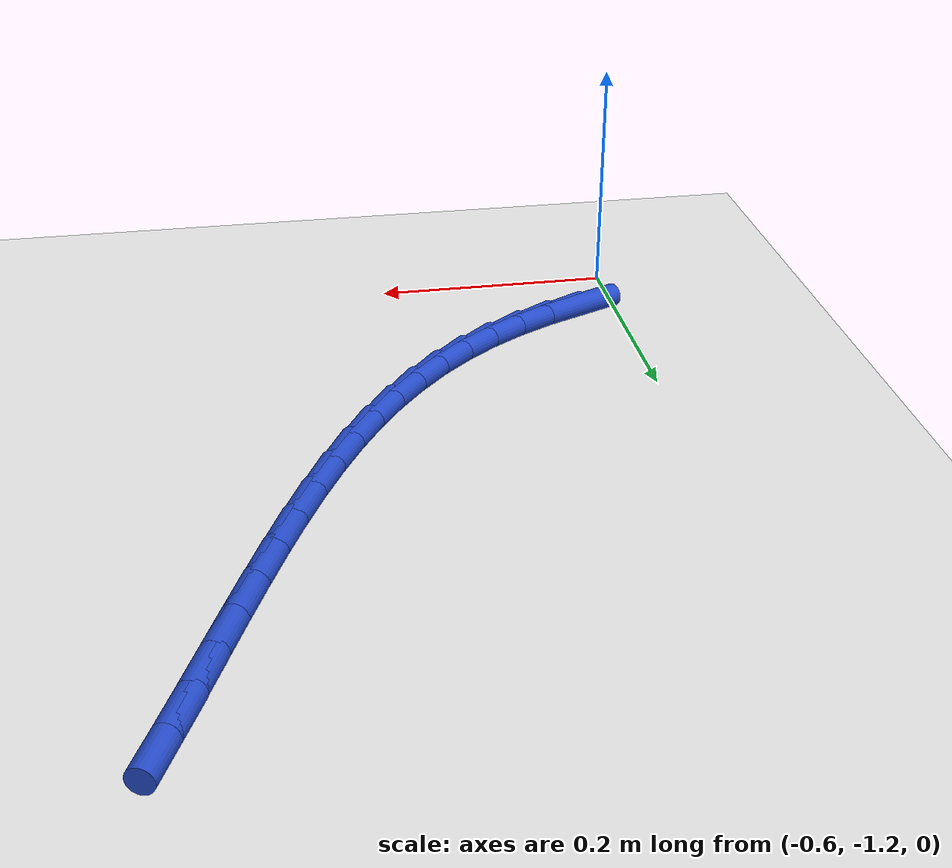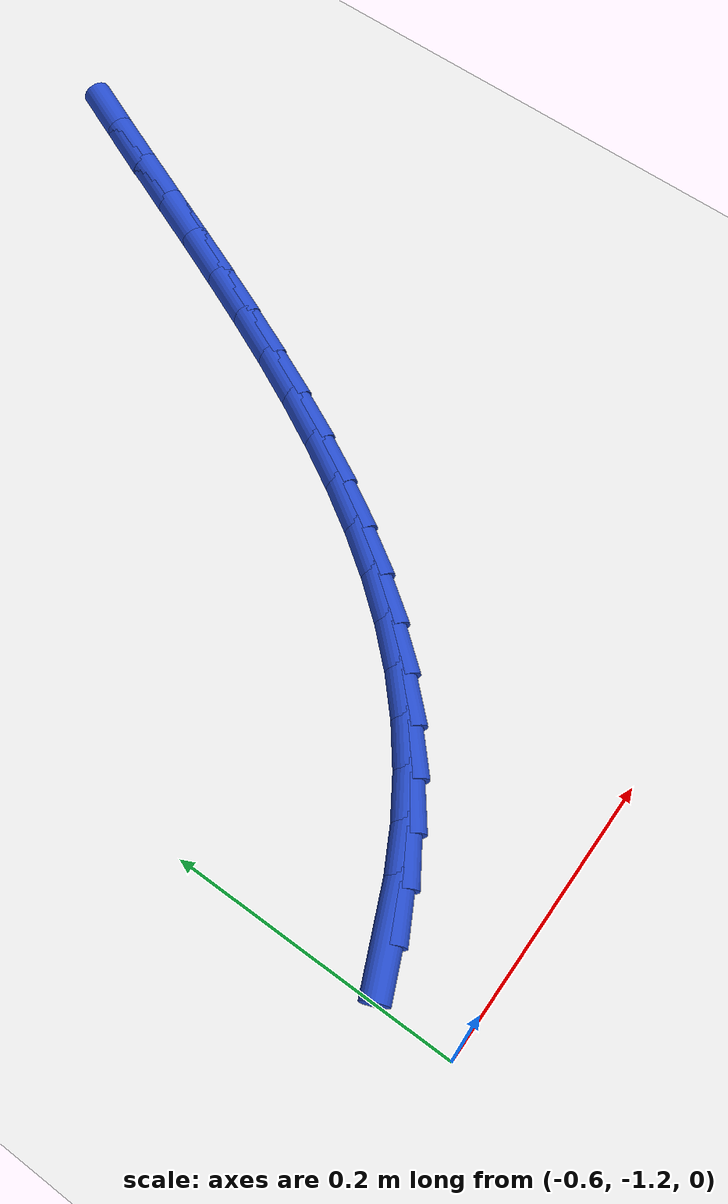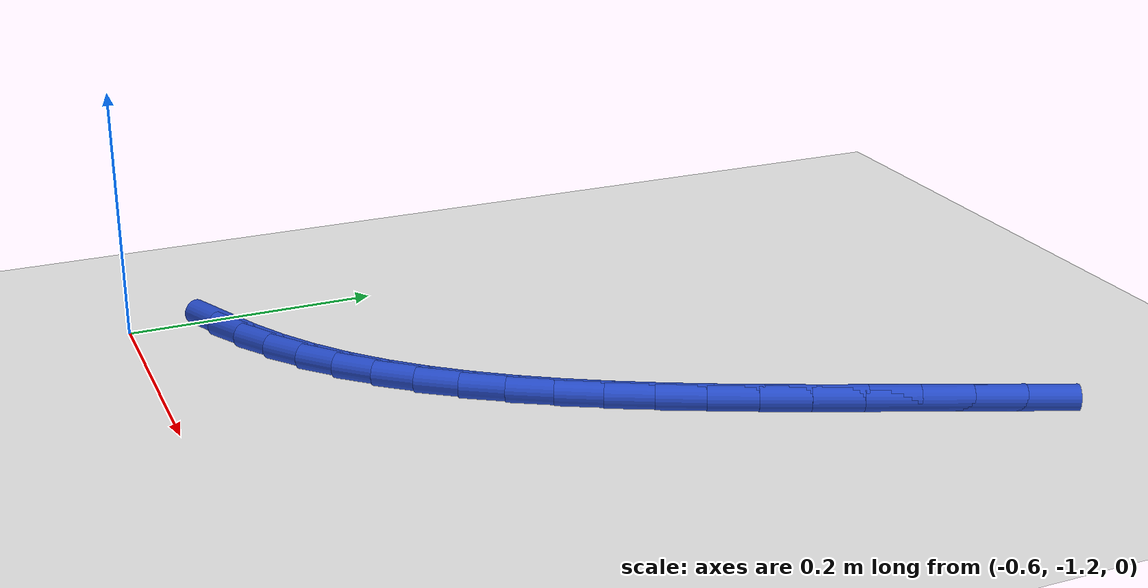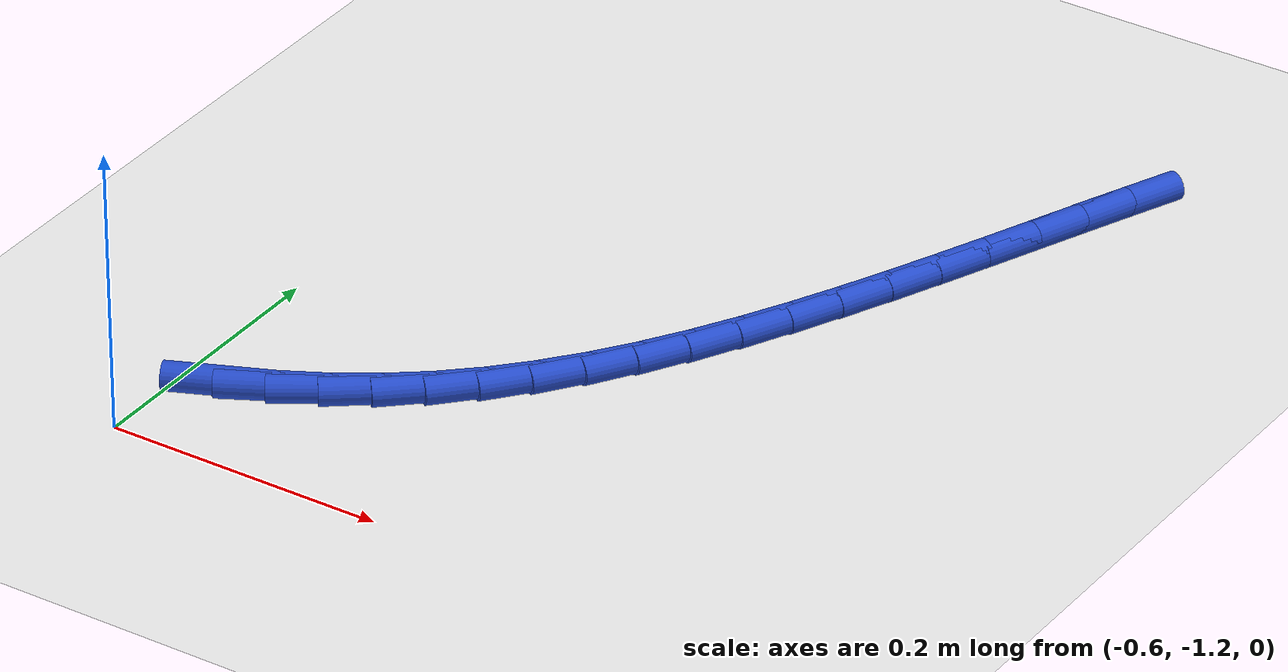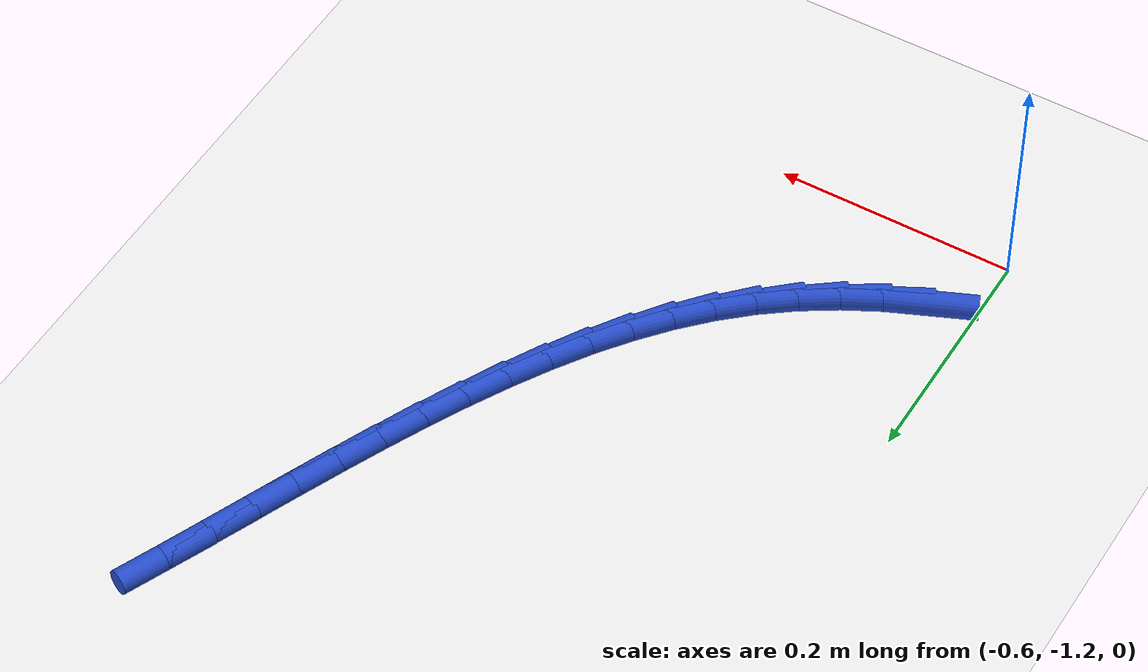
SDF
<sdf version="1.6">
 <world name="default">
  <model name="ground_plane">
   <static>1</static>
   <link name="link">
    <collision name="collision">
     <geometry><plane><normal>0 0 1</normal><size>100 100</size></plane></geometry>
     <surface><friction><ode><mu>100</mu><mu2>50</mu2></ode></friction></surface>
    </collision>
    <visual name="visual">
     <cast_shadows>0</cast_shadows>
     <geometry><plane><normal>0 0 1</normal><size>100 100</size></plane></geometry>
     <material>
      <script><uri>file://media/materials/scripts/gazebo.material</uri><name>Gazebo/WhiteGlow</name></script>
     </material>
    </visual>
   </link>
  </model>
  <model name="line">
   <link name="link_184">
    <pose>-0.5645913273455582 -1.1299433025380412 0.01 0 1.57 0.4108148422694466</pose>
    <collision name="collision">
     <geometry><cylinder><radius>0.01</radius><length>0.08</length></cylinder></geometry>
    </collision>
    <visual name="visual">
     <material>
      <script><name>Gazebo/Blue</name><uri>file://media/materials/scripts/gazebo.material</uri></script>
     </material>
     <geometry><cylinder><radius>0.01</radius><length>0.08</length></cylinder></geometry>
    </visual>
   </link>
   <link name="link_185">
    <pose>-0.5334767354039931 -1.1163897764095263 0.01 0 1.57 0.48780431756810383</pose>
    <collision name="collision">
     <geometry><cylinder><radius>0.01</radius><length>0.08</length></cylinder></geometry>
    </collision>
    <visual name="visual">
     <material>
      <script><name>Gazebo/Blue</name><uri>file://media/materials/scripts/gazebo.material</uri></script>
     </material>
     <geometry><cylinder><radius>0.01</radius><length>0.08</length></cylinder></geometry>
    </visual>
   </link>
   <link name="link_186">
    <pose>-0.5038778151258286 -1.1006854452859793 0.01 0 1.57 0.5676453198071622</pose>
    <collision name="collision">
     <geometry><cylinder><radius>0.01</radius><length>0.08</length></cylinder></geometry>
    </collision>
    <visual name="visual">
     <material>
      <script><name>Gazebo/Blue</name><uri>file://media/materials/scripts/gazebo.material</uri></script>
     </material>
     <geometry><cylinder><radius>0.01</radius><length>0.08</length></cylinder></geometry>
    </visual>
   </link>
   <link name="link_187">
    <pose>-0.47584352873182306 -1.0828093412624504 0.01 0 1.57 0.649609374188849</pose>
    <collision name="collision">
     <geometry><cylinder><radius>0.01</radius><length>0.08</length></cylinder></geometry>
    </collision>
    <visual name="visual">
     <material>
      <script><name>Gazebo/Blue</name><uri>file://media/materials/scripts/gazebo.material</uri></script>
     </material>
     <geometry><cylinder><radius>0.01</radius><length>0.08</length></cylinder></geometry>
    </visual>
   </link>
   <link name="link_188">
    <pose>-0.44942283844273273 -1.0627404964339877 0.01 0 1.57 0.7325397777059796</pose>
    <collision name="collision">
     <geometry><cylinder><radius>0.01</radius><length>0.08</length></cylinder></geometry>
    </collision>
    <visual name="visual">
     <material>
      <script><name>Gazebo/Blue</name><uri>file://media/materials/scripts/gazebo.material</uri></script>
     </material>
     <geometry><cylinder><radius>0.01</radius><length>0.08</length></cylinder></geometry>
    </visual>
   </link>
   <link name="link_189">
    <pose>-0.4246583139401859 -1.0404647623933392 0.01 0 1.57 0.8110759091077192</pose>
    <collision name="collision">
     <geometry><cylinder><radius>0.01</radius><length>0.08</length></cylinder></geometry>
    </collision>
    <visual name="visual">
     <material>
      <script><name>Gazebo/Blue</name><uri>file://media/materials/scripts/gazebo.material</uri></script>
     </material>
     <geometry><cylinder><radius>0.01</radius><length>0.08</length></cylinder></geometry>
    </visual>
   </link>
   <link name="link_190">
    <pose>-0.401491117052594 -1.0160761716309767 0.01 0 1.57 0.8811070999727622</pose>
    <collision name="collision">
     <geometry><cylinder><radius>0.01</radius><length>0.08</length></cylinder></geometry>
    </collision>
    <visual name="visual">
     <material>
      <script><name>Gazebo/Blue</name><uri>file://media/materials/scripts/gazebo.material</uri></script>
     </material>
     <geometry><cylinder><radius>0.01</radius><length>0.08</length></cylinder></geometry>
    </visual>
   </link>
   <link name="link_191">
    <pose>-0.3797812925755198 -0.9897552914880426 0.01 0 1.57 0.9424661646177209</pose>
    <collision name="collision">
     <geometry><cylinder><radius>0.01</radius><length>0.08</length></cylinder></geometry>
    </collision>
    <visual name="visual">
     <material>
      <script><name>Gazebo/Blue</name><uri>file://media/materials/scripts/gazebo.material</uri></script>
     </material>
     <geometry><cylinder><radius>0.01</radius><length>0.08</length></cylinder></geometry>
    </visual>
   </link>
   <link name="link_192">
    <pose>-0.35938661444345044 -0.9616851118378746 0.01 0 1.57 0.995417060128679</pose>
    <collision name="collision">
     <geometry><cylinder><radius>0.01</radius><length>0.08</length></cylinder></geometry>
    </collision>
    <visual name="visual">
     <material>
      <script><name>Gazebo/Blue</name><uri>file://media/materials/scripts/gazebo.material</uri></script>
     </material>
     <geometry><cylinder><radius>0.01</radius><length>0.08</length></cylinder></geometry>
    </visual>
   </link>
   <link name="link_193">
    <pose>-0.3401648565908737 -0.9320486225538117 0.01 0 1.57 1.0404117188490236</pose>
    <collision name="collision">
     <geometry><cylinder><radius>0.01</radius><length>0.08</length></cylinder></geometry>
    </collision>
    <visual name="visual">
     <material>
      <script><name>Gazebo/Blue</name><uri>file://media/materials/scripts/gazebo.material</uri></script>
     </material>
     <geometry><cylinder><radius>0.01</radius><length>0.08</length></cylinder></geometry>
    </visual>
   </link>
   <link name="link_194">
    <pose>-0.32197379295227735 -0.9010288135091924 0.01 0 1.57 1.0779795012358993</pose>
    <collision name="collision">
     <geometry><cylinder><radius>0.01</radius><length>0.08</length></cylinder></geometry>
    </collision>
    <visual name="visual">
     <material>
      <script><name>Gazebo/Blue</name><uri>file://media/materials/scripts/gazebo.material</uri></script>
     </material>
     <geometry><cylinder><radius>0.01</radius><length>0.08</length></cylinder></geometry>
    </visual>
   </link>
   <link name="link_195">
    <pose>-0.3046711974621487 -0.8688086745773549 0.01 0 1.57 1.1086514284643414</pose>
    <collision name="collision">
     <geometry><cylinder><radius>0.01</radius><length>0.08</length></cylinder></geometry>
    </collision>
    <visual name="visual">
     <material>
      <script><name>Gazebo/Blue</name><uri>file://media/materials/scripts/gazebo.material</uri></script>
     </material>
     <geometry><cylinder><radius>0.01</radius><length>0.08</length></cylinder></geometry>
    </visual>
   </link>
   <link name="link_196">
    <pose>-0.28811484405497645 -0.8355711956316394 0.01 0 1.57 1.132913021463429</pose>
    <collision name="collision">
     <geometry><cylinder><radius>0.01</radius><length>0.08</length></cylinder></geometry>
    </collision>
    <visual name="visual">
     <material>
      <script><name>Gazebo/Blue</name><uri>file://media/materials/scripts/gazebo.material</uri></script>
     </material>
     <geometry><cylinder><radius>0.01</radius><length>0.08</length></cylinder></geometry>
    </visual>
   </link>
   <link name="link_197">
    <pose>-0.2721625066652477 -0.801499366545384 0.01 0 1.57 1.1511775785936242</pose>
    <collision name="collision">
     <geometry><cylinder><radius>0.01</radius><length>0.08</length></cylinder></geometry>
    </collision>
    <visual name="visual">
     <material>
      <script><name>Gazebo/Blue</name><uri>file://media/materials/scripts/gazebo.material</uri></script>
     </material>
     <geometry><cylinder><radius>0.01</radius><length>0.08</length></cylinder></geometry>
    </visual>
   </link>
   <link name="link_198">
    <pose>-0.25667195922745034 -0.766776177191927 0.01 0 1.57 1.1637726356718858</pose>
    <collision name="collision">
     <geometry><cylinder><radius>0.01</radius><length>0.08</length></cylinder></geometry>
    </collision>
    <visual name="visual">
     <material>
      <script><name>Gazebo/Blue</name><uri>file://media/materials/scripts/gazebo.material</uri></script>
     </material>
     <geometry><cylinder><radius>0.01</radius><length>0.08</length></cylinder></geometry>
    </visual>
   </link>
   <link name="link_199">
    <pose>-0.2415009756760718 -0.7315846174446071 0.01 0 1.57 1.1709341691366346</pose>
    <collision name="collision">
     <geometry><cylinder><radius>0.01</radius><length>0.08</length></cylinder></geometry>
    </collision>
    <visual name="visual">
     <material>
      <script><name>Gazebo/Blue</name><uri>file://media/materials/scripts/gazebo.material</uri></script>
     </material>
     <geometry><cylinder><radius>0.01</radius><length>0.08</length></cylinder></geometry>
    </visual>
   </link>
   <link name="link_200">
    <pose>-0.2265073299456004 -0.6961076771767638 0.01 0 1.57 1.1728048786552687</pose>
    <collision name="collision">
     <geometry><cylinder><radius>0.01</radius><length>0.08</length></cylinder></geometry>
    </collision>
    <visual name="visual">
     <material>
      <script><name>Gazebo/Blue</name><uri>file://media/materials/scripts/gazebo.material</uri></script>
     </material>
     <geometry><cylinder><radius>0.01</radius><length>0.08</length></cylinder></geometry>
    </visual>
   </link>
   <link name="link_201">
    <pose>-0.2115487959705237 -0.6605283462617358 0.01 0 1.57 1.1694343154054758</pose>
    <collision name="collision">
     <geometry><cylinder><radius>0.01</radius><length>0.08</length></cylinder></geometry>
    </collision>
    <visual name="visual">
     <material>
      <script><name>Gazebo/Blue</name><uri>file://media/materials/scripts/gazebo.material</uri></script>
     </material>
     <geometry><cylinder><radius>0.01</radius><length>0.08</length></cylinder></geometry>
    </visual>
   </link>
   <link name="link_202">
    <pose>-0.1964831476853294 -0.6250296145728617 0.01 0 1.57 1.1607797078456985</pose>
    <collision name="collision">
     <geometry><cylinder><radius>0.01</radius><length>0.08</length></cylinder></geometry>
    </collision>
    <visual name="visual">
     <material>
      <script><name>Gazebo/Blue</name><uri>file://media/materials/scripts/gazebo.material</uri></script>
     </material>
     <geometry><cylinder><radius>0.01</radius><length>0.08</length></cylinder></geometry>
    </visual>
   </link>
  </model>
 </world>
</sdf>
